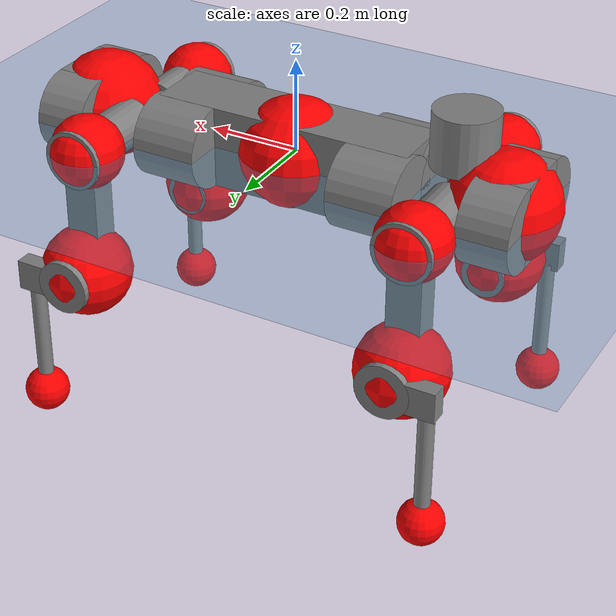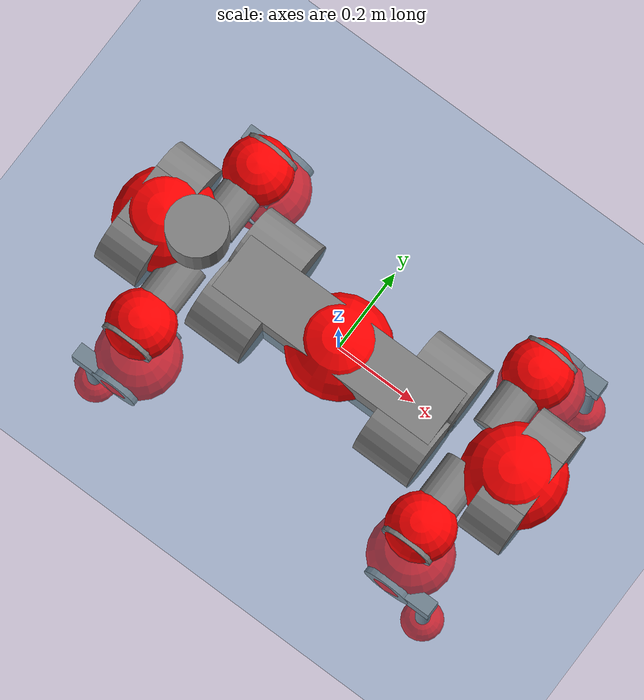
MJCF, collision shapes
<mujoco model="anymal_c">
  <compiler angle="radian" assetdir="assets" balanceinertia="true" inertiafromgeom="false"/>

  <option timestep="0.005" density="1.2" viscosity="2e-05"/>

  <size nkey="1"/>

  <visual>
    <quality shadowsize="8192"/>
    <map shadowclip="0.5"/>
  </visual>

  <default>
    <default class="/">
      <material specular="0" shininess="0.25"/>
      <geom contype="0" conaffinity="0" group="1" solref="-1000 -80"/>
      <site size="0.01 0.005 0.005" group="5"/>
      <general forcelimited="true" forcerange="-80 80" biastype="affine" gainprm="80" biasprm="0 -80 -2"/>
      <default class="anymal_c">
        <joint armature="0.01" damping="0.01" frictionloss="0.1"/>
        <default class="visual">
          <geom type="mesh" group="2"/>
          <default class="visual_zflip"/>
        </default>
        <default class="collision">
          <geom type="cylinder" group="3"/>
          <default class="foot">
            <geom size="0.03 0 0" type="sphere" condim="6" priority="1" friction="0.8 0.02 0.01" solimp="0.015 1 0.03"/>
          </default>
        </default>
      </default>
      <default class="reward_collision_sphere">
        <geom group="5" rgba="1 0 0 1"/>
      </default>
    </default>
  </default>

  <asset>
    <texture type="skybox" colorspace="auto" name="//unnamed_texture_0" builtin="gradient" rgb1="0.95 0.95 0.95" rgb2="0.95 0.95 0.95" width="100" height="600"/>
    <texture type="2d" colorspace="auto" name="texplane" builtin="checker" rgb1="0.345 0.575 0.748" rgb2="0.345 0.575 0.748" markrgb="1 1 1" width="512" height="512"/>
    <texture type="2d" colorspace="linear" name="base" file="base.png"/>
    <texture type="2d" colorspace="linear" name="top_shell" file="top_shell.png"/>
    <texture type="2d" colorspace="linear" name="bottom_shell" file="bottom_shell.png"/>
    <texture type="2d" colorspace="linear" name="remote" file="remote.png"/>
    <texture type="2d" colorspace="linear" name="hatch" file="hatch.png"/>
    <texture type="2d" colorspace="linear" name="handle" file="handle.png"/>
    <texture type="2d" colorspace="linear" name="face" file="face.png"/>
    <texture type="2d" colorspace="linear" name="battery" file="battery.png"/>
    <texture type="2d" colorspace="linear" name="lidar_cage" file="lidar_cage.png"/>
    <texture type="2d" colorspace="linear" name="depth_camera" file="depth_camera.png"/>
    <texture type="2d" colorspace="linear" name="wide_angle_camera" file="wide_angle_camera.png"/>
    <texture type="2d" colorspace="linear" name="lidar" file="lidar.png"/>
    <texture type="2d" colorspace="linear" name="drive" file="drive.png"/>
    <texture type="2d" colorspace="linear" name="hip_l" file="hip_l.png"/>
    <texture type="2d" colorspace="linear" name="shank_l" file="shank_l.png"/>
    <texture type="2d" colorspace="linear" name="foot" file="foot.png"/>
    <texture type="2d" colorspace="linear" name="thigh" file="thigh.png"/>
    <texture type="2d" colorspace="linear" name="shank_r" file="shank_r.png"/>
    <texture type="2d" colorspace="linear" name="hip_r" file="hip_r.png"/>
    <material name="MatPlane" class="/" texture="texplane" texuniform="true" texrepeat="2 2" specular="0.9" shininess="0.5"/>
    <material name="black_plastic" class="/" rgba="0.007 0.007 0.007 1"/>
    <material name="green" class="/" rgba="0.052 0.178 0.033 1"/>
    <material name="red" class="/" rgba="0.178 0.006 0.005 1"/>
    <material name="yellow" class="/" rgba="0.178 0.119 0.006 1"/>
    <material name="lwl" class="/" rgba="0.8 0.8 0.8 1"/>
    <material name="base" class="/" texture="base"/>
    <material name="top_shell" class="/" texture="top_shell"/>
    <material name="bottom_shell" class="/" texture="bottom_shell"/>
    <material name="hip_l" class="/" texture="hip_l"/>
    <material name="thigh" class="/" texture="thigh"/>
    <material name="shank_l" class="/" texture="shank_l"/>
    <material name="foot" class="/" texture="foot"/>
    <material name="hip_r" class="/" texture="hip_r"/>
    <material name="shank" class="/" texture="shank_r"/>
    <material name="hatch" class="/" texture="hatch"/>
    <material name="remote" class="/" texture="remote"/>
    <material name="handle" class="/" texture="handle"/>
    <material name="face" class="/" texture="face"/>
    <material name="depth_camera" class="/" texture="depth_camera"/>
    <material name="wide_angle_camera" class="/" texture="wide_angle_camera"/>
    <material name="battery" class="/" texture="battery"/>
    <material name="lidar_cage" class="/" texture="lidar_cage"/>
    <material name="lidar" class="/" texture="lidar"/>
    <material name="drive" class="/" texture="drive"/>
    <mesh name="base_0" class="/" file="base_0.obj"/>
    <mesh name="base_1" class="/" file="base_1.obj"/>
    <mesh name="base_2" class="/" file="base_2.obj"/>
    <mesh name="base_3" class="/" file="base_3.obj"/>
    <mesh name="base_4" class="/" file="base_4.obj"/>
    <mesh name="base_5" class="/" file="base_5.obj"/>
    <mesh name="top_shell" class="/" file="top_shell.obj"/>
    <mesh name="bottom_shell" class="/" file="bottom_shell.obj"/>
    <mesh name="remote" class="/" file="remote.obj"/>
    <mesh name="handle" class="/" file="handle.obj"/>
    <mesh name="face" class="/" file="face.obj"/>
    <mesh name="wide_angle_camera" class="/" file="wide_angle_camera.obj"/>
    <mesh name="depth_camera" class="/" file="depth_camera.obj"/>
    <mesh name="battery" class="/" file="battery.obj"/>
    <mesh name="lidar_cage" class="/" file="lidar_cage.obj"/>
    <mesh name="lidar" class="/" file="lidar.obj"/>
    <mesh name="drive" class="/" file="drive.obj"/>
    <mesh name="hip_l" class="/" file="hip_l.obj"/>
    <mesh name="thigh" class="/" file="thigh.obj"/>
    <mesh name="shank_l" class="/" file="shank_l.obj"/>
    <mesh name="foot" class="/" file="foot.obj"/>
    <mesh name="hip_r" class="/" file="hip_r.obj"/>
    <mesh name="hatch" class="/" file="hatch.obj"/>
    <mesh name="shank_r" class="/" file="shank_r.obj"/>
  </asset>

  <worldbody>
    <geom name="floor" class="/" size="100 100 0.125" type="plane" group="0" material="MatPlane"/>
    <light name="toplight_shadow" class="/" pos="0 0 5" dir="0.0990148 0.0990148 -0.990148" type="directional" ambient="0.04 0.04 0.04" diffuse="0.55 0.55 0.55" specular="0.12 0.12 0.12"/>
    <light name="toplight_fill" class="/" pos="0 0 5" dir="0.0990148 0.0990148 -0.990148" type="directional" castshadow="false" ambient="0.04 0.04 0.04" diffuse="0.3 0.3 0.3" specular="0.08 0.08 0.08"/>
    <body name="trunk" childclass="anymal_c" pos="0.00119389 0.000962766 -0.00240397" quat="1 0.000951349 -5.81406e-05 6.26787e-05">
      <inertial pos="0.000910632 0.00187895 0.0462171" quat="0.501453 0.49947 0.500174 0.4989" mass="18.4353" diaginertia="0.760395 0.563098 0.175941"/>
      <joint name="//unnamed_joint_0" type="free" armature="0" damping="0" frictionloss="0"/>
      <geom name="//unnamed_geom_1" class="visual" material="green" mesh="base_0"/>
      <geom name="//unnamed_geom_2" class="visual" material="yellow" mesh="base_1"/>
      <geom name="//unnamed_geom_3" class="visual" material="red" mesh="base_2"/>
      <geom name="//unnamed_geom_4" class="visual" material="black_plastic" mesh="base_3"/>
      <geom name="//unnamed_geom_5" class="visual" material="lwl" mesh="base_4"/>
      <geom name="//unnamed_geom_6" class="visual" material="base" mesh="base_5"/>
      <geom name="trunk_1" class="collision" size="0.286822 0.0692329 0.0890137" type="box"/>
      <geom name="trunk_2" class="collision" size="0.0890137 0.0717055" pos="0.224878 0.068525 0" quat="0.707107 0 0.707107 0"/>
      <geom name="trunk_3" class="collision" size="0.0890137 0.0717055" pos="-0.224878 0.068525 0" quat="0.707107 0 0.707107 0"/>
      <geom name="trunk_4" class="collision" size="0.0890137 0.0717055" pos="0.224878 -0.068525 0" quat="0.707107 0 0.707107 0"/>
      <geom name="trunk_5" class="collision" size="0.0890137 0.0717055" pos="-0.224878 -0.068525 0" quat="0.707107 0 0.707107 0"/>
      <geom name="//unnamed_geom_12" class="visual" material="top_shell" mesh="top_shell"/>
      <geom name="//unnamed_geom_13" class="visual" material="bottom_shell" mesh="bottom_shell"/>
      <geom name="//unnamed_geom_14" class="visual" material="remote" mesh="remote"/>
      <geom name="//unnamed_geom_15" class="visual" material="handle" mesh="handle"/>
      <geom name="//unnamed_geom_16" class="visual" pos="0.428561 0 0" quat="1 0 0 0" material="face" mesh="face"/>
      <geom name="trunk_6" class="collision" size="0.0543973 0.0692329 0.0890137" pos="0.485426 0 0" type="box"/>
      <geom name="//unnamed_geom_18" class="collision" size="0.0890137 0.0543973" pos="0.485426 0.068525 0" quat="0.707107 0 0.707107 0"/>
      <geom name="//unnamed_geom_19" class="collision" size="0.0890137 0.0543973" pos="0.485426 -0.068525 0" quat="0.707107 0 0.707107 0"/>
      <geom name="//unnamed_geom_20" class="visual" pos="0.477307 0 -0.0272594" quat="0.965926 0 0.258819 0" material="depth_camera" mesh="depth_camera"/>
      <geom name="//unnamed_geom_21" class="visual" pos="0.530402 0 0.0142855" material="wide_angle_camera" mesh="wide_angle_camera"/>
      <geom name="//unnamed_geom_22" class="visual_zflip" pos="-0.428561 0 0" quat="0 0 0 1" material="face" mesh="face"/>
      <geom name="trunk_7" class="collision" size="0.0543973 0.0692329 0.0890137" pos="-0.485426 0 0" quat="0 0 0 1" type="box"/>
      <geom name="//unnamed_geom_24" class="collision" size="0.0890137 0.0543973" pos="-0.485426 -0.068525 0" quat="0 -0.707107 0 0.707107"/>
      <geom name="//unnamed_geom_25" class="collision" size="0.0890137 0.0543973" pos="-0.485426 0.068525 0" quat="0 -0.707107 0 0.707107"/>
      <geom name="//unnamed_geom_26" class="visual" pos="-0.477307 0 -0.0272594" quat="0 -0.258819 0 0.965926" material="depth_camera" mesh="depth_camera"/>
      <geom name="//unnamed_geom_27" class="visual_zflip" pos="-0.530402 0 0.0142855" quat="0 0 0 1" material="wide_angle_camera" mesh="wide_angle_camera"/>
      <geom name="//unnamed_geom_28" class="visual" material="battery" mesh="battery"/>
      <geom name="//unnamed_geom_29" class="visual" pos="0 0.0741239 0.028327" quat="0.683013 -0.183013 0.183013 0.683013" material="depth_camera" mesh="depth_camera"/>
      <geom name="//unnamed_geom_30" class="visual" pos="0 -0.0741239 0.028327" quat="0.683013 0.183013 0.183013 -0.683013" material="depth_camera" mesh="depth_camera"/>
      <geom name="//unnamed_geom_31" class="visual" pos="-0.376348 0 0.0701391" quat="1 0 0 0" material="lidar_cage" mesh="lidar_cage"/>
      <geom name="trunk_8" class="collision" size="0.0692329 0.0593425" pos="-0.376348 0 0.127395"/>
      <geom name="//unnamed_geom_33" class="visual" pos="-0.376348 -2.16056e-05 0.135698" quat="0.707107 0 0 -0.707107" material="lidar" mesh="lidar"/>
      <geom name="//unnamed_geom_34" class="visual" pos="0.310073 0.1018 4.25311e-10" quat="0.258819 0.965926 0 0" material="drive" mesh="drive"/>
      <geom name="//unnamed_geom_35" class="visual" pos="0.310073 -0.1018 -4.25311e-10" quat="0.258819 -0.965926 0 0" material="drive" mesh="drive"/>
      <geom name="//unnamed_geom_36" class="visual" pos="-0.310073 0.1018 -4.25311e-10" quat="0 0 0.965926 -0.258819" material="drive" mesh="drive"/>
      <geom name="//unnamed_geom_37" class="visual" pos="-0.310073 -0.1018 4.25311e-10" quat="0 0 -0.965926 -0.258819" material="drive" mesh="drive"/>
      <geom name="//unnamed_geom_38" class="visual" pos="0.119935 0 0.0696619" quat="1 0 0 0" material="hatch" mesh="hatch"/>
      <geom name="//unnamed_geom_39" class="reward_collision_sphere" size="0.118685"/>
      <geom name="//unnamed_geom_40" class="reward_collision_sphere" size="0.118685" pos="0.465265 0 0"/>
      <geom name="//unnamed_geom_41" class="reward_collision_sphere" size="0.118685" pos="-0.465265 0 0"/>
      <site name="imu" pos="0.262415 0.0215729 0.0546479" size="0.00989041"/>
      <camera name="track" pos="0 -1.95786 0" quat="0.707107 0.707107 0 0" mode="trackcom"/>
      <camera name="ego_camera" pos="0.465265 0 -0.0381709" quat="-0.5 -0.5 0.5 0.5"/>
      <body name="LF_HIP" pos="0.310705 0.102074 0.00112388" quat="0.259217 0.965819 0.000683617 0.000810578">
        <inertial pos="0.0588859 -0.0174376 -0.00683631" quat="-0.12508 0.707163 -0.134397 0.682798" mass="2.61091" diaginertia="0.00702298 0.00456773 0.00261091"/>
        <joint name="LF_HAA" pos="0 0 0" axis="0.999969 0.00390192 0.00678678" range="-0.690229 0.508443" armature="0.00993239" damping="0.0232329" frictionloss="0.098729"/>
        <geom name="//unnamed_geom_42" class="visual" pos="0 2.50191e-05 -4.10937e-06" quat="0.258819 -0.965926 0 0" material="hip_l" mesh="hip_l"/>
        <geom name="//unnamed_geom_43" class="visual" pos="0.0619319 -0.0743109 -0.042721" quat="0.183013 -0.683013 0.683013 0.183013" material="drive" mesh="drive"/>
        <geom name="//unnamed_geom_44" class="collision" size="0.0494521 0.0692329" pos="0.0619319 -0.0117078 -0.00658925" quat="-0.353553 -0.612372 0.612372 -0.353553"/>
        <body name="LF_THIGH" pos="0.0649254 -0.0721971 -0.0368564" quat="0.183659 -0.682447 0.683169 0.183891">
          <inertial pos="0.0349045 -0.0027444 -0.236451" quat="0.993209 -0.004845 -0.0807804 0.0835837" mass="2.89932" diaginertia="0.0355645 0.0256145 0.00323388"/>
          <joint name="LF_HFE" pos="0 0 0" axis="0.999985 -0.00495751 0.00222551" range="-3.10449 3.14066" armature="0.00897022" damping="0.0133206" frictionloss="0.0914612"/>
          <geom name="//unnamed_geom_45" class="visual" pos="0.00109416 1.72414e-06 0" quat="0.707107 0 0 -0.707107" material="thigh" mesh="thigh"/>
          <geom name="//unnamed_geom_46" class="collision" size="0.0642877 0.0395616" pos="0.0413569 0 0" quat="0.5 0.5 -0.5 -0.5"/>
          <geom name="//unnamed_geom_47" class="collision" size="0.037089 0.0296712 0.139765" pos="0.0310177 0 -0.134852" quat="0.707107 0 0 -0.707107" type="box"/>
          <geom name="//unnamed_geom_48" class="visual" pos="0.103702 0 -0.271968" quat="1 0 0 0" material="drive" mesh="drive"/>
          <geom name="//unnamed_geom_49" class="collision" size="0.0494521 0.0692329" pos="0.0313278 0 -0.271968" quat="0.707107 0 0.707107 0"/>
          <geom name="//unnamed_geom_50" class="reward_collision_sphere" size="0.0791233" pos="0.0258481 0 0"/>
          <body name="LF_SHANK" pos="0.103221 -0.00230786 -0.271731" quat="0.999999 0.00117192 -0.000473536 0.000793246">
            <inertial pos="0.00309164 -0.0604719 -0.074162" quat="0.992219 -0.122985 -0.00181619 -0.0192976" mass="0.56825" diaginertia="0.0117352 0.00870581 0.000908414"/>
            <joint name="LF_KFE" pos="0 0 0" axis="0.999957 0.00392246 0.00841777" stiffness="0.00509485" range="-3.17998 3.12383" armature="0.0110612" damping="0" frictionloss="0.1118"/>
            <geom name="//unnamed_geom_51" class="visual" pos="0.000356782 0.00190238 0" quat="0.707107 0 0 -0.707107" material="shank_l" mesh="shank_l"/>
            <geom name="LF_kfe_act" class="collision" size="0.0593425 0.0197808" pos="0.0206784 0 0" quat="0.5 0.5 -0.5 -0.5"/>
            <geom name="//unnamed_geom_53" class="collision" size="0.0568689 0.0333801 0.0187918" pos="0.0206784 -0.0562874 0" quat="0.5 0.5 -0.5 -0.5" type="box"/>
            <geom name="//unnamed_geom_54" class="visual" pos="0.0134926 -0.0854837 -0.322516" quat="0.382683 0 0 -0.92388" material="foot" mesh="foot"/>
            <geom name="LF_calf" class="collision" size="0.0173082 0.139704" pos="0.0134927 -0.0860967 -0.161258" quat="0.707107 0 0 -0.707107"/>
            <geom name="LF_foot" class="foot" size="0.0288995" pos="0.0134927 -0.0860967 -0.301044" quat="0.707107 0 0 -0.707107"/>
            <geom name="//unnamed_geom_57" class="reward_collision_sphere" size="0.0989041" pos="-0.0516961 0 0"/>
            <geom name="//unnamed_geom_58" class="reward_collision_sphere" size="0.0494521" pos="0.0134927 -0.0860967 -0.301044"/>
            <site name="LF_foot" class="foot" pos="0.0134927 -0.0860967 -0.301044" quat="0.707107 0 0 -0.707107" size="0.00989041"/>
          </body>
        </body>
      </body>
      <body name="RF_HIP" pos="0.309895 -0.101445 -0.00168333" quat="0.257425 -0.966298 -0.000252965 -4.01059e-05">
        <inertial pos="0.0613576 0.0130705 -0.00810586" quat="0.137985 0.675718 0.117195 0.714584" mass="2.67145" diaginertia="0.00645607 0.00426667 0.00242579"/>
        <joint name="RF_HAA" pos="0 0 0" axis="0.999937 -0.00107198 -0.0111427" range="-0.466177 0.717207" armature="0.0103454" damping="0.00496033" frictionloss="0.0868598"/>
        <geom name="//unnamed_geom_59" class="visual" pos="0 -2.50189e-05 -4.10936e-06" quat="0.258819 0.965926 0 0" material="hip_r" mesh="hip_r"/>
        <geom name="//unnamed_geom_60" class="visual" pos="0.0619319 0.0743109 -0.042721" quat="0.183013 0.683013 0.683013 -0.183013" material="drive" mesh="drive"/>
        <geom name="//unnamed_geom_61" class="collision" size="0.0494521 0.0692329" pos="0.0619319 0.0117078 -0.00658925" quat="-0.353553 0.612372 0.612372 0.353553"/>
        <body name="RF_THIGH" pos="0.0624934 0.0696131 -0.0396163" quat="0.183631 0.683211 0.682585 -0.183247">
          <inertial pos="0.0347128 -0.00276366 -0.233086" quat="0.993353 -0.00281938 -0.0674576 0.0932222" mass="2.9805" diaginertia="0.0350938 0.025616 0.00330934"/>
          <joint name="RF_HFE" pos="0 0 0" axis="0.999986 0.00530997 -0.000389661" range="-3.12505 3.19193" armature="0.00989174" damping="0.0110396" frictionloss="0.109977"/>
          <geom name="//unnamed_geom_62" class="visual" pos="0.00109416 1.72414e-06 0" quat="0.707107 0 0 -0.707107" material="thigh" mesh="thigh"/>
          <geom name="//unnamed_geom_63" class="collision" size="0.0642877 0.0395616" pos="0.0413569 0 0" quat="0.5 0.5 0.5 0.5"/>
          <geom name="//unnamed_geom_64" class="collision" size="0.037089 0.0296712 0.139765" pos="0.0310177 0 -0.134852" quat="0.707107 0 0 0.707107" type="box"/>
          <geom name="//unnamed_geom_65" class="visual" pos="0.103702 0 -0.271968" quat="1 0 0 0" material="drive" mesh="drive"/>
          <geom name="//unnamed_geom_66" class="collision" size="0.0494521 0.0692329" pos="0.0313278 0 -0.271968" quat="0.707107 0 0.707107 0"/>
          <geom name="//unnamed_geom_67" class="reward_collision_sphere" size="0.0791233" pos="0.0258481 0 0"/>
          <body name="RF_SHANK" pos="0.102272 -0.00249538 -0.27356" quat="1 -5.87401e-05 2.90098e-05 9.94767e-06">
            <inertial pos="0.00534056 0.0591167 -0.0764436" quat="0.992654 0.117784 -0.0117338 0.0250644" mass="0.573946" diaginertia="0.0120626 0.00830371 0.000855262"/>
            <joint name="RF_KFE" pos="0 0 0" axis="0.999985 0.00520179 0.00161047" range="-3.16022 3.19343" armature="0.00923568" damping="0.0230666" frictionloss="0.0891555"/>
            <geom name="//unnamed_geom_68" class="visual" pos="0.00035678 -0.00190237 0" quat="0.707107 0 0 0.707107" material="shank" mesh="shank_r"/>
            <geom name="RF_kfe_act" class="collision" size="0.0593425 0.0197808" pos="0.0206784 0 0" quat="0.5 0.5 0.5 0.5"/>
            <geom name="//unnamed_geom_70" class="collision" size="0.0568689 0.0333801 0.0187918" pos="0.0206784 0.0562874 0" quat="0.5 0.5 0.5 0.5" type="box"/>
            <geom name="//unnamed_geom_71" class="visual" pos="0.0134928 0.0854837 -0.322516" quat="0.382683 0 0 0.92388" material="foot" mesh="foot"/>
            <geom name="RF_calf" class="collision" size="0.0173082 0.139704" pos="0.0134927 0.0860967 -0.161258" quat="0.707107 0 0 0.707107"/>
            <geom name="RF_foot" class="foot" size="0.0250675" pos="0.0134927 0.0860967 -0.301044" quat="0.707107 0 0 0.707107"/>
            <geom name="//unnamed_geom_74" class="reward_collision_sphere" size="0.0989041" pos="-0.0516961 0 0"/>
            <geom name="//unnamed_geom_75" class="reward_collision_sphere" size="0.0494521" pos="0.0134927 0.0860967 -0.301044"/>
            <site name="RF_foot" class="foot" pos="0.0134927 0.0860967 -0.301044" quat="0.707107 0 0 0.707107" size="0.00989041"/>
          </body>
        </body>
      </body>
      <body name="LH_HIP" pos="-0.310173 0.101278 -0.00187996" quat="-2.00839e-05 -6.0408e-08 0.965924 -0.258825">
        <inertial pos="0.0605499 0.0164775 -0.0107706" quat="0.137327 0.677004 0.124625 0.712233" mass="2.74927" diaginertia="0.00682822 0.00442655 0.00266954"/>
        <joint name="LH_HAA" pos="0 0 0" axis="1 -6.17698e-05 0.000149289" stiffness="0.00744153" range="-0.478074 0.668718" armature="0.00871809" damping="0.00487892" frictionloss="0.109755"/>
        <geom name="//unnamed_geom_76" class="visual" pos="0 -2.50189e-05 -4.10936e-06" quat="-0.258819 -0.965926 0 0" material="hip_r" mesh="hip_r"/>
        <geom name="//unnamed_geom_77" class="visual" pos="0.0619319 0.0743109 -0.042721" quat="0.183013 0.683013 0.683013 -0.183013" material="drive" mesh="drive"/>
        <geom name="//unnamed_geom_78" class="collision" size="0.0494521 0.0692329" pos="0.0619319 0.0117078 -0.00658925" quat="-0.353553 0.612372 0.612372 0.353553"/>
        <body name="LH_THIGH" pos="0.0619093 0.0686192 -0.0384721" quat="0.182919 0.682944 0.683073 -0.183139">
          <inertial pos="0.0318497 0.000148488 -0.234744" quat="0.992562 0.00222823 -0.0836766 0.0883983" mass="3.0576" diaginertia="0.0357804 0.0269122 0.00345809"/>
          <joint name="LH_HFE" pos="0 0 0" axis="0.999925 0.0119956 0.00240537" stiffness="0.0099258" range="-3.15743 3.11907" armature="0.0111732" damping="0" frictionloss="0.100009"/>
          <geom name="//unnamed_geom_79" class="visual" pos="0.00109416 1.72414e-06 0" quat="0.707107 0 0 -0.707107" material="thigh" mesh="thigh"/>
          <geom name="//unnamed_geom_80" class="collision" size="0.0642877 0.0395616" pos="0.0413569 0 0" quat="0.5 0.5 -0.5 -0.5"/>
          <geom name="//unnamed_geom_81" class="collision" size="0.037089 0.0296712 0.139765" pos="0.0310177 0 -0.134852" quat="0.707107 0 0 -0.707107" type="box"/>
          <geom name="//unnamed_geom_82" class="visual" pos="0.103702 0 -0.271968" quat="1 0 0 0" material="drive" mesh="drive"/>
          <geom name="//unnamed_geom_83" class="collision" size="0.0494521 0.0692329" pos="0.0313278 0 -0.271968" quat="0.707107 0 0.707107 0"/>
          <geom name="//unnamed_geom_84" class="reward_collision_sphere" size="0.0791233" pos="0.0258481 0 0"/>
          <body name="LH_SHANK" pos="0.102866 -0.000288468 -0.273681" quat="1 -7.07126e-05 5.34475e-05 0.000266978">
            <inertial pos="0.00410291 0.0612908 -0.0778969" quat="0.992276 0.120177 0.0108958 0.028764" mass="0.579576" diaginertia="0.0118062 0.00836287 0.000885892"/>
            <joint name="LH_KFE" pos="0 0 0" axis="0.999956 0.0086103 -0.00364921" range="-3.14051 3.18482" armature="0.0111425" damping="0" frictionloss="0.106687"/>
            <geom name="//unnamed_geom_85" class="visual" pos="0.00035678 -0.00190237 0" quat="-0.707107 0 0 -0.707107" material="shank" mesh="shank_r"/>
            <geom name="LH_kfe_act" class="collision" size="0.0593425 0.0197808" pos="0.0206784 0 0" quat="0.5 0.5 -0.5 -0.5"/>
            <geom name="//unnamed_geom_87" class="collision" size="0.0568689 0.0333801 0.0187918" pos="0.0206784 0.0562874 0" quat="0.5 0.5 -0.5 -0.5" type="box"/>
            <geom name="//unnamed_geom_88" class="visual" pos="0.0134928 0.0854837 -0.322516" quat="-0.382683 0 0 -0.92388" material="foot" mesh="foot"/>
            <geom name="LH_calf" class="collision" size="0.0173082 0.139704" pos="0.0134927 0.0860967 -0.161258" quat="0.707107 0 0 -0.707107"/>
            <geom name="LH_foot" class="foot" size="0.0297389" pos="0.0134927 0.0860967 -0.301044" quat="0.707107 0 0 -0.707107"/>
            <geom name="//unnamed_geom_91" class="reward_collision_sphere" size="0.0989041" pos="-0.0516961 0 0"/>
            <geom name="//unnamed_geom_92" class="reward_collision_sphere" size="0.0494521" pos="0.0134927 0.0860967 -0.301044"/>
            <site name="LH_foot" class="foot" pos="0.0134927 0.0860967 -0.301044" quat="0.707107 0 0 -0.707107" size="0.00989041"/>
          </body>
        </body>
      </body>
      <body name="RH_HIP" pos="-0.308747 -0.10442 -0.000317072" quat="0.000644153 -0.000485109 -0.965975 -0.258635">
        <inertial pos="0.0601147 -0.0123059 -0.00965427" quat="-0.128103 0.704532 -0.148089 0.682124" mass="2.69091" diaginertia="0.0069031 0.00444102 0.00263825"/>
        <joint name="RH_HAA" pos="0 0 0" axis="0.999974 -0.00498205 -0.00525182" stiffness="0.00794616" range="-0.693833 0.480171" armature="0.00860116" damping="0.0145962" frictionloss="0.097282"/>
        <geom name="//unnamed_geom_93" class="visual" pos="0 2.50191e-05 -4.10937e-06" quat="-0.258819 0.965926 0 0" material="hip_l" mesh="hip_l"/>
        <geom name="//unnamed_geom_94" class="visual" pos="0.0619319 -0.0743109 -0.042721" quat="-0.183013 0.683013 -0.683013 -0.183013" material="drive" mesh="drive"/>
        <geom name="//unnamed_geom_95" class="collision" size="0.0494521 0.0692329" pos="0.0619319 -0.0117078 -0.00658925" quat="0.353553 0.612372 -0.612372 0.353553"/>
        <body name="RH_THIGH" pos="0.0613431 -0.0727633 -0.0417351" quat="-0.183127 0.682998 -0.682992 -0.183033">
          <inertial pos="0.0331036 0.000423768 -0.234461" quat="0.993315 -0.00520036 -0.0811136 0.0819663" mass="2.88342" diaginertia="0.0360215 0.0278434 0.00332388"/>
          <joint name="RH_HFE" pos="0 0 0" axis="1 -0.000675466 0.000197606" stiffness="0.00635204" range="-3.14513 3.19117" armature="0.0104154" damping="0.00721508" frictionloss="0.0975285"/>
          <geom name="//unnamed_geom_96" class="visual" pos="0.00109416 1.72414e-06 0" quat="0.707107 0 0 -0.707107" material="thigh" mesh="thigh"/>
          <geom name="//unnamed_geom_97" class="collision" size="0.0642877 0.0395616" pos="0.0413569 0 0" quat="0.5 0.5 0.5 0.5"/>
          <geom name="//unnamed_geom_98" class="collision" size="0.037089 0.0296712 0.139765" pos="0.0310177 0 -0.134852" quat="0.707107 0 0 0.707107" type="box"/>
          <geom name="//unnamed_geom_99" class="visual" pos="0.103702 0 -0.271968" quat="1 0 0 0" material="drive" mesh="drive"/>
          <geom name="//unnamed_geom_100" class="collision" size="0.0494521 0.0692329" pos="0.0313278 0 -0.271968" quat="0.707107 0 0.707107 0"/>
          <geom name="//unnamed_geom_101" class="reward_collision_sphere" size="0.0791233" pos="0.0258481 0 0"/>
          <body name="RH_SHANK" pos="0.104236 -0.00127363 -0.268251" quat="1 -1.8435e-05 -5.7622e-05 2.64474e-05">
            <inertial pos="0.00296427 -0.0607573 -0.076882" quat="0.993519 -0.112887 0.00274719 -0.0130098" mass="0.576276" diaginertia="0.0122766 0.00829774 0.000914132"/>
            <joint name="RH_KFE" pos="0 0 0" axis="0.99993 0.00608717 0.0101802" range="-3.14058 3.12584" armature="0.00948409" damping="0.0200599" frictionloss="0.0955405"/>
            <geom name="//unnamed_geom_102" class="visual" pos="0.000356782 0.00190238 0" quat="0.707107 0 0 -0.707107" material="shank_l" mesh="shank_l"/>
            <geom name="RH_kfe_act" class="collision" size="0.0593425 0.0197808" pos="0.0206784 0 0" quat="0.5 0.5 0.5 0.5"/>
            <geom name="//unnamed_geom_104" class="collision" size="0.0568689 0.0333801 0.0187918" pos="0.0206784 -0.0562874 0" quat="0.5 0.5 0.5 0.5" type="box"/>
            <geom name="//unnamed_geom_105" class="visual" pos="0.0134926 -0.0854837 -0.322516" quat="0.382683 0 0 -0.92388" material="foot" mesh="foot"/>
            <geom name="RH_calf" class="collision" size="0.0173082 0.139704" pos="0.0134927 -0.0860967 -0.161258" quat="0.707107 0 0 0.707107"/>
            <geom name="RH_foot" class="foot" size="0.0277976" pos="0.0134927 -0.0860967 -0.301044" quat="0.707107 0 0 0.707107"/>
            <geom name="//unnamed_geom_108" class="reward_collision_sphere" size="0.0989041" pos="-0.0516961 0 0"/>
            <geom name="//unnamed_geom_109" class="reward_collision_sphere" size="0.0494521" pos="0.0134927 -0.0860967 -0.301044"/>
            <site name="RH_foot" class="foot" pos="0.0134927 -0.0860967 -0.301044" quat="0.707107 0 0 0.707107" size="0.00989041"/>
          </body>
        </body>
      </body>
    </body>
  </worldbody>

  <contact>
    <pair class="/" geom1="floor" geom2="LF_foot" name="//unnamed_contact_0"/>
    <pair class="/" geom1="floor" geom2="RF_foot" name="//unnamed_contact_1"/>
    <pair class="/" geom1="floor" geom2="LH_foot" name="//unnamed_contact_2"/>
    <pair class="/" geom1="floor" geom2="RH_foot" name="//unnamed_contact_3"/>
  </contact>

  <actuator>
    <general name="LF_HAA" class="/" joint="LF_HAA" forcerange="-79.204 79.204" gainprm="83.8118" biasprm="0 -83.8118 -1.96779"/>
    <general name="LF_HFE" class="/" joint="LF_HFE" forcerange="-71.3027 71.3027" gainprm="83.8118" biasprm="0 -83.8118 -1.96779"/>
    <general name="LF_KFE" class="/" joint="LF_KFE" forcerange="-82.0764 82.0764" gainprm="83.8118" biasprm="0 -83.8118 -1.96779"/>
    <general name="RF_HAA" class="/" joint="RF_HAA" forcerange="-79.5594 79.5594" gainprm="83.8118" biasprm="0 -83.8118 -1.96779"/>
    <general name="RF_HFE" class="/" joint="RF_HFE" forcerange="-89.3799 89.3799" gainprm="83.8118" biasprm="0 -83.8118 -1.96779"/>
    <general name="RF_KFE" class="/" joint="RF_KFE" forcerange="-78.7496 78.7496" gainprm="83.8118" biasprm="0 -83.8118 -1.96779"/>
    <general name="LH_HAA" class="/" joint="LH_HAA" forcerange="-84.2928 84.2928" gainprm="83.8118" biasprm="0 -83.8118 -1.96779"/>
    <general name="LH_HFE" class="/" joint="LH_HFE" forcerange="-72.801 72.801" gainprm="83.8118" biasprm="0 -83.8118 -1.96779"/>
    <general name="LH_KFE" class="/" joint="LH_KFE" forcerange="-74.2279 74.2279" gainprm="83.8118" biasprm="0 -83.8118 -1.96779"/>
    <general name="RH_HAA" class="/" joint="RH_HAA" forcerange="-71.5086 71.5086" gainprm="83.8118" biasprm="0 -83.8118 -1.96779"/>
    <general name="RH_HFE" class="/" joint="RH_HFE" forcerange="-85.024 85.024" gainprm="83.8118" biasprm="0 -83.8118 -1.96779"/>
    <general name="RH_KFE" class="/" joint="RH_KFE" forcerange="-76.9677 76.9677" gainprm="83.8118" biasprm="0 -83.8118 -1.96779"/>
  </actuator>

  <sensor>
    <gyro site="imu" name="imu_angular_velocity"/>
    <velocimeter site="imu" name="imu_linear_velocity"/>
    <framelinvel objtype="site" objname="LF_foot" name="LF_foot_global_linear_velocity"/>
    <framelinvel objtype="site" objname="RF_foot" name="RF_foot_global_linear_velocity"/>
    <framelinvel objtype="site" objname="LH_foot" name="LH_foot_global_linear_velocity"/>
    <framelinvel objtype="site" objname="RH_foot" name="RH_foot_global_linear_velocity"/>
  </sensor>

  <keyframe>
    <key name="home" qpos="0 0 0.55 1 0 0 0 0 0.4 -0.8 0 -0.4 0.8 0 -0.4 0.8 0 0.4 -0.8"/>
  </keyframe>
</mujoco>
